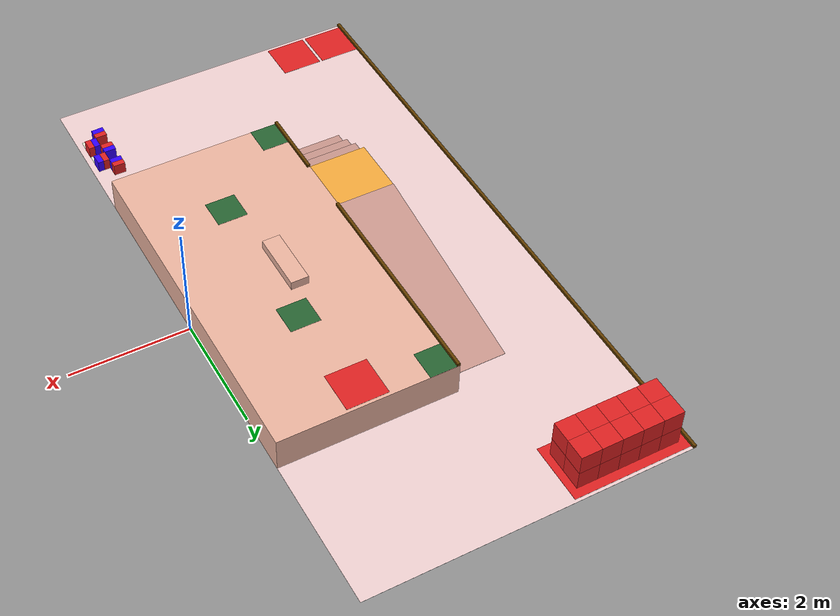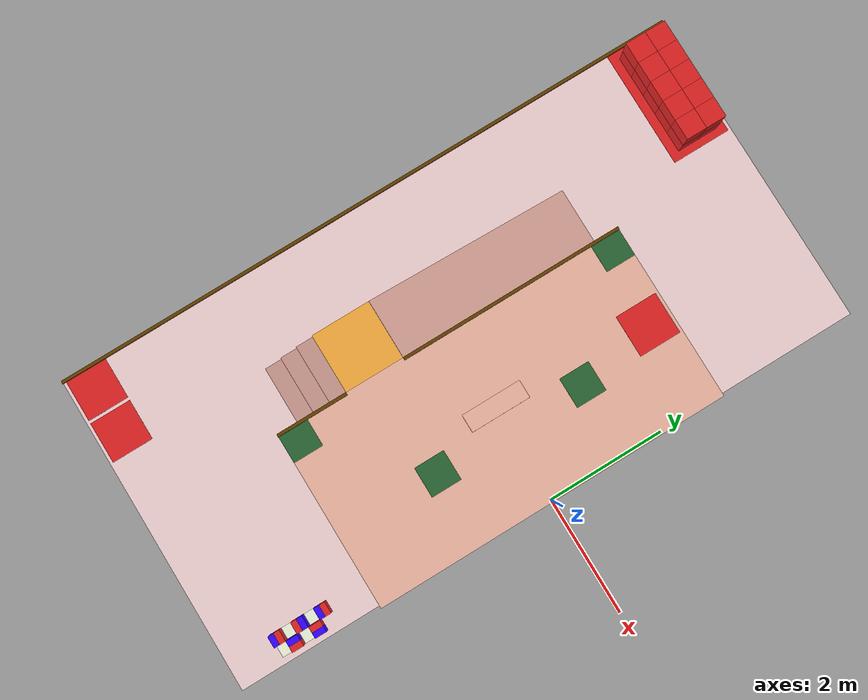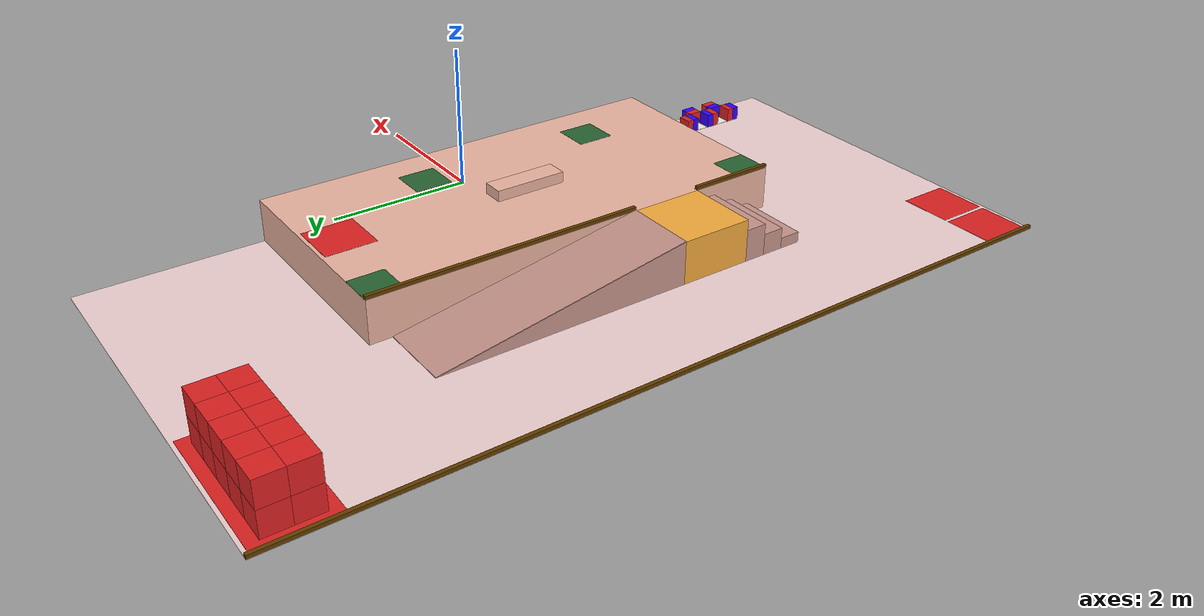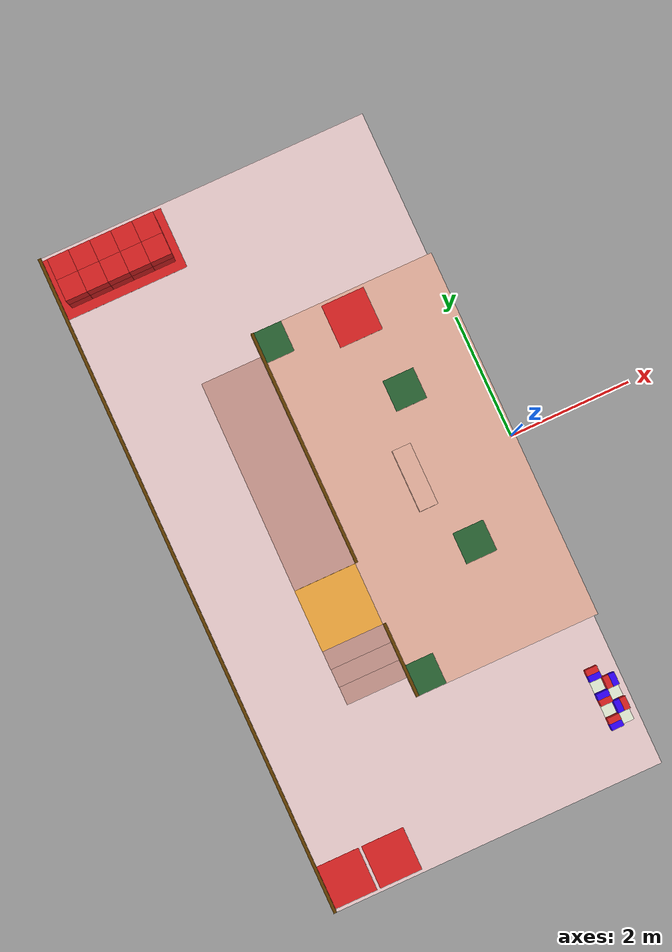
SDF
<sdf version="1.9">
 <world name="robocon_2027">
  <model name="robocon_2027_field">
   <static>true</static>
   <link name="ground_red">
    <pose>-2.750000 0.000000 0.001000 0.000000 0.000000 0.000000</pose>
    <visual name="visual">
     <geometry><box><size>5.500000 11.000000 0.002000</size></box></geometry>
     <cast_shadows>false</cast_shadows>
     <material>
      <ambient>0.941176 0.823529 0.823529 1</ambient>
      <diffuse>0.941176 0.823529 0.823529 1</diffuse>
      <specular>0.08 0.08 0.08 1</specular>
      <double_sided>true</double_sided>
     </material>
    </visual>
   </link>
   <link name="storage_red">
    <pose>-4.450000 4.950000 0.003000 0.000000 0.000000 0.000000</pose>
    <visual name="visual">
     <geometry><box><size>2.000000 1.000000 0.002000</size></box></geometry>
     <cast_shadows>false</cast_shadows>
     <material>
      <ambient>0.874510 0.133333 0.133333 1</ambient>
      <diffuse>0.874510 0.133333 0.133333 1</diffuse>
      <specular>0.08 0.08 0.08 1</specular>
      <double_sided>true</double_sided>
     </material>
    </visual>
   </link>
   <link name="start_red_outer">
    <pose>-5.100000 -5.100000 0.003000 0.000000 0.000000 0.000000</pose>
    <visual name="visual">
     <geometry><box><size>0.700000 0.700000 0.002000</size></box></geometry>
     <cast_shadows>false</cast_shadows>
     <material>
      <ambient>0.874510 0.133333 0.133333 1</ambient>
      <diffuse>0.874510 0.133333 0.133333 1</diffuse>
      <specular>0.08 0.08 0.08 1</specular>
      <double_sided>true</double_sided>
     </material>
    </visual>
   </link>
   <link name="start_red_inner">
    <pose>-4.350000 -5.100000 0.003000 0.000000 0.000000 0.000000</pose>
    <visual name="visual">
     <geometry><box><size>0.700000 0.700000 0.002000</size></box></geometry>
     <cast_shadows>false</cast_shadows>
     <material>
      <ambient>0.874510 0.133333 0.133333 1</ambient>
      <diffuse>0.874510 0.133333 0.133333 1</diffuse>
      <specular>0.08 0.08 0.08 1</specular>
      <double_sided>true</double_sided>
     </material>
    </visual>
   </link>
   <link name="sky_grid_0_0">
    <pose>-0.400000 -4.625000 0.006000 0.000000 0.000000 0.000000</pose>
    <visual name="visual">
     <geometry><box><size>0.192000 0.192000 0.002000</size></box></geometry>
     <cast_shadows>false</cast_shadows>
     <material>
      <ambient>0.803922 0.901961 0.745098 1</ambient>
      <diffuse>0.803922 0.901961 0.745098 1</diffuse>
      <specular>0.08 0.08 0.08 1</specular>
      <double_sided>true</double_sided>
     </material>
    </visual>
   </link>
   <link name="sky_grid_0_1">
    <pose>-0.200000 -4.625000 0.006000 0.000000 0.000000 0.000000</pose>
    <visual name="visual">
     <geometry><box><size>0.192000 0.192000 0.002000</size></box></geometry>
     <cast_shadows>false</cast_shadows>
     <material>
      <ambient>0.921569 0.960784 0.862745 1</ambient>
      <diffuse>0.921569 0.960784 0.862745 1</diffuse>
      <specular>0.08 0.08 0.08 1</specular>
      <double_sided>true</double_sided>
     </material>
    </visual>
   </link>
   <link name="sky_grid_1_0">
    <pose>-0.400000 -4.425000 0.006000 0.000000 0.000000 0.000000</pose>
    <visual name="visual">
     <geometry><box><size>0.192000 0.192000 0.002000</size></box></geometry>
     <cast_shadows>false</cast_shadows>
     <material>
      <ambient>0.921569 0.960784 0.862745 1</ambient>
      <diffuse>0.921569 0.960784 0.862745 1</diffuse>
      <specular>0.08 0.08 0.08 1</specular>
      <double_sided>true</double_sided>
     </material>
    </visual>
   </link>
   <link name="sky_grid_1_1">
    <pose>-0.200000 -4.425000 0.006000 0.000000 0.000000 0.000000</pose>
    <visual name="visual">
     <geometry><box><size>0.192000 0.192000 0.002000</size></box></geometry>
     <cast_shadows>false</cast_shadows>
     <material>
      <ambient>0.803922 0.901961 0.745098 1</ambient>
      <diffuse>0.803922 0.901961 0.745098 1</diffuse>
      <specular>0.08 0.08 0.08 1</specular>
      <double_sided>true</double_sided>
     </material>
    </visual>
   </link>
   <link name="sky_grid_2_0">
    <pose>-0.400000 -4.225000 0.006000 0.000000 0.000000 0.000000</pose>
    <visual name="visual">
     <geometry><box><size>0.192000 0.192000 0.002000</size></box></geometry>
     <cast_shadows>false</cast_shadows>
     <material>
      <ambient>0.803922 0.901961 0.745098 1</ambient>
      <diffuse>0.803922 0.901961 0.745098 1</diffuse>
      <specular>0.08 0.08 0.08 1</specular>
      <double_sided>true</double_sided>
     </material>
    </visual>
   </link>
   <link name="sky_grid_2_1">
    <pose>-0.200000 -4.225000 0.006000 0.000000 0.000000 0.000000</pose>
    <visual name="visual">
     <geometry><box><size>0.192000 0.192000 0.002000</size></box></geometry>
     <cast_shadows>false</cast_shadows>
     <material>
      <ambient>0.921569 0.960784 0.862745 1</ambient>
      <diffuse>0.921569 0.960784 0.862745 1</diffuse>
      <specular>0.08 0.08 0.08 1</specular>
      <double_sided>true</double_sided>
     </material>
    </visual>
   </link>
   <link name="sky_grid_3_0">
    <pose>-0.400000 -4.025000 0.006000 0.000000 0.000000 0.000000</pose>
    <visual name="visual">
     <geometry><box><size>0.192000 0.192000 0.002000</size></box></geometry>
     <cast_shadows>false</cast_shadows>
     <material>
      <ambient>0.921569 0.960784 0.862745 1</ambient>
      <diffuse>0.921569 0.960784 0.862745 1</diffuse>
      <specular>0.08 0.08 0.08 1</specular>
      <double_sided>true</double_sided>
     </material>
    </visual>
   </link>
   <link name="sky_grid_3_1">
    <pose>-0.200000 -4.025000 0.006000 0.000000 0.000000 0.000000</pose>
    <visual name="visual">
     <geometry><box><size>0.192000 0.192000 0.002000</size></box></geometry>
     <cast_shadows>false</cast_shadows>
     <material>
      <ambient>0.803922 0.901961 0.745098 1</ambient>
      <diffuse>0.803922 0.901961 0.745098 1</diffuse>
      <specular>0.08 0.08 0.08 1</specular>
      <double_sided>true</double_sided>
     </material>
    </visual>
   </link>
   <link name="sky_grid_4_0">
    <pose>-0.400000 -3.825000 0.006000 0.000000 0.000000 0.000000</pose>
    <visual name="visual">
     <geometry><box><size>0.192000 0.192000 0.002000</size></box></geometry>
     <cast_shadows>false</cast_shadows>
     <material>
      <ambient>0.803922 0.901961 0.745098 1</ambient>
      <diffuse>0.803922 0.901961 0.745098 1</diffuse>
      <specular>0.08 0.08 0.08 1</specular>
      <double_sided>true</double_sided>
     </material>
    </visual>
   </link>
   <link name="wall_ground_x_neg">
    <pose>-5.475000 0.000000 0.025000 0.000000 0.000000 0.000000</pose>
    <collision name="collision">
     <geometry><box><size>0.050000 11.000000 0.050000</size></box></geometry>
    </collision>
    <visual name="visual">
     <geometry><box><size>0.050000 11.000000 0.050000</size></box></geometry>
     <material>
      <ambient>0.392157 0.243137 0.000000 1</ambient>
      <diffuse>0.392157 0.243137 0.000000 1</diffuse>
      <specular>0.08 0.08 0.08 1</specular>
      <double_sided>true</double_sided>
     </material>
    </visual>
   </link>
   <link name="l1_red">
    <pose>-1.500000 0.000000 0.300000 0.000000 0.000000 0.000000</pose>
    <collision name="collision">
     <geometry><box><size>3.000000 6.000000 0.600000</size></box></geometry>
    </collision>
    <visual name="visual">
     <geometry><box><size>3.000000 6.000000 0.600000</size></box></geometry>
     <material>
      <ambient>0.921569 0.705882 0.627451 1</ambient>
      <diffuse>0.921569 0.705882 0.627451 1</diffuse>
      <specular>0.08 0.08 0.08 1</specular>
      <double_sided>true</double_sided>
     </material>
    </visual>
   </link>
   <link name="l1_spot_red_positive">
    <pose>-2.750000 2.750000 0.603000 0.000000 0.000000 0.000000</pose>
    <visual name="visual">
     <geometry><box><size>0.500000 0.500000 0.002000</size></box></geometry>
     <cast_shadows>false</cast_shadows>
     <material>
      <ambient>0.156863 0.392157 0.196078 1</ambient>
      <diffuse>0.156863 0.392157 0.196078 1</diffuse>
      <specular>0.08 0.08 0.08 1</specular>
      <double_sided>true</double_sided>
     </material>
    </visual>
   </link>
   <link name="l1_spot_red_negative">
    <pose>-2.750000 -2.750000 0.603000 0.000000 0.000000 0.000000</pose>
    <visual name="visual">
     <geometry><box><size>0.500000 0.500000 0.002000</size></box></geometry>
     <cast_shadows>false</cast_shadows>
     <material>
      <ambient>0.156863 0.392157 0.196078 1</ambient>
      <diffuse>0.156863 0.392157 0.196078 1</diffuse>
      <specular>0.08 0.08 0.08 1</specular>
      <double_sided>true</double_sided>
     </material>
    </visual>
   </link>
   <link name="l1_retry_red">
    <pose>-1.500000 2.600000 0.603000 0.000000 0.000000 0.000000</pose>
    <visual name="visual">
     <geometry><box><size>0.700000 0.700000 0.002000</size></box></geometry>
     <cast_shadows>false</cast_shadows>
     <material>
      <ambient>0.874510 0.133333 0.133333 1</ambient>
      <diffuse>0.874510 0.133333 0.133333 1</diffuse>
      <specular>0.08 0.08 0.08 1</specular>
      <double_sided>true</double_sided>
     </material>
    </visual>
   </link>
   <link name="wall_l1_red_before_transfer">
    <pose>-2.975000 -2.400000 0.625000 0.000000 0.000000 0.000000</pose>
    <collision name="collision">
     <geometry><box><size>0.050000 1.200000 0.050000</size></box></geometry>
    </collision>
    <visual name="visual">
     <geometry><box><size>0.050000 1.200000 0.050000</size></box></geometry>
     <material>
      <ambient>0.392157 0.243137 0.000000 1</ambient>
      <diffuse>0.392157 0.243137 0.000000 1</diffuse>
      <specular>0.08 0.08 0.08 1</specular>
      <double_sided>true</double_sided>
     </material>
    </visual>
   </link>
   <link name="wall_l1_red_after_transfer">
    <pose>-2.975000 1.100000 0.625000 0.000000 0.000000 0.000000</pose>
    <collision name="collision">
     <geometry><box><size>0.050000 3.800000 0.050000</size></box></geometry>
    </collision>
    <visual name="visual">
     <geometry><box><size>0.050000 3.800000 0.050000</size></box></geometry>
     <material>
      <ambient>0.392157 0.243137 0.000000 1</ambient>
      <diffuse>0.392157 0.243137 0.000000 1</diffuse>
      <specular>0.08 0.08 0.08 1</specular>
      <double_sided>true</double_sided>
     </material>
    </visual>
   </link>
   <link name="ramp_red">
    <pose>-3.500000 0.950000 0.000000 0.000000 0.000000 0.000000</pose>
    <visual name="visual">
     <geometry><mesh><uri>model://ares_2027sim/meshes/ramp_wedge.obj</uri></mesh></geometry>
     <material>
      <ambient>0.784314 0.588235 0.549020 1</ambient>
      <diffuse>0.784314 0.588235 0.549020 1</diffuse>
      <specular>0.08 0.08 0.08 1</specular>
      <double_sided>true</double_sided>
     </material>
    </visual>
    <collision name="slope_collision">
     <pose>0.000000 0.000000 0.300000 -0.169778 0.000000 0.000000</pose>
     <geometry><box><size>1.000000 3.551056 0.020000</size></box></geometry>
    </collision>
    <visual name="slope_surface_visual">
     <pose>0.000000 0.001000 0.305000 -0.169778 0.000000 0.000000</pose>
     <geometry><box><size>1.000000 3.551056 0.010000</size></box></geometry>
     <material>
      <ambient>0.784314 0.588235 0.549020 1</ambient>
      <diffuse>0.784314 0.588235 0.549020 1</diffuse>
      <specular>0.08 0.08 0.08 1</specular>
      <double_sided>true</double_sided>
     </material>
    </visual>
    <collision name="fill_collision_00">
     <pose>0.000000 -1.700000 0.291429 0.000000 0.000000 0.000000</pose>
     <geometry><box><size>1.000000 0.100000 0.582857</size></box></geometry>
    </collision>
    <collision name="fill_collision_01">
     <pose>0.000000 -1.600000 0.282857 0.000000 0.000000 0.000000</pose>
     <geometry><box><size>1.000000 0.100000 0.565714</size></box></geometry>
    </collision>
    <collision name="fill_collision_02">
     <pose>0.000000 -1.500000 0.274286 0.000000 0.000000 0.000000</pose>
     <geometry><box><size>1.000000 0.100000 0.548571</size></box></geometry>
    </collision>
    <collision name="fill_collision_03">
     <pose>0.000000 -1.400000 0.265714 0.000000 0.000000 0.000000</pose>
     <geometry><box><size>1.000000 0.100000 0.531429</size></box></geometry>
    </collision>
    <collision name="fill_collision_04">
     <pose>0.000000 -1.300000 0.257143 0.000000 0.000000 0.000000</pose>
     <geometry><box><size>1.000000 0.100000 0.514286</size></box></geometry>
    </collision>
    <collision name="fill_collision_05">
     <pose>0.000000 -1.200000 0.248571 0.000000 0.000000 0.000000</pose>
     <geometry><box><size>1.000000 0.100000 0.497143</size></box></geometry>
    </collision>
    <collision name="fill_collision_06">
     <pose>0.000000 -1.100000 0.240000 0.000000 0.000000 0.000000</pose>
     <geometry><box><size>1.000000 0.100000 0.480000</size></box></geometry>
    </collision>
    <collision name="fill_collision_07">
     <pose>0.000000 -1.000000 0.231429 0.000000 0.000000 0.000000</pose>
     <geometry><box><size>1.000000 0.100000 0.462857</size></box></geometry>
    </collision>
    <collision name="fill_collision_08">
     <pose>0.000000 -0.900000 0.222857 0.000000 0.000000 0.000000</pose>
     <geometry><box><size>1.000000 0.100000 0.445714</size></box></geometry>
    </collision>
    <collision name="fill_collision_09">
     <pose>0.000000 -0.800000 0.214286 0.000000 0.000000 0.000000</pose>
     <geometry><box><size>1.000000 0.100000 0.428571</size></box></geometry>
    </collision>
    <collision name="fill_collision_10">
     <pose>0.000000 -0.700000 0.205714 0.000000 0.000000 0.000000</pose>
     <geometry><box><size>1.000000 0.100000 0.411429</size></box></geometry>
    </collision>
    <collision name="fill_collision_11">
     <pose>0.000000 -0.600000 0.197143 0.000000 0.000000 0.000000</pose>
     <geometry><box><size>1.000000 0.100000 0.394286</size></box></geometry>
    </collision>
    <collision name="fill_collision_12">
     <pose>0.000000 -0.500000 0.188571 0.000000 0.000000 0.000000</pose>
     <geometry><box><size>1.000000 0.100000 0.377143</size></box></geometry>
    </collision>
    <collision name="fill_collision_13">
     <pose>0.000000 -0.400000 0.180000 0.000000 0.000000 0.000000</pose>
     <geometry><box><size>1.000000 0.100000 0.360000</size></box></geometry>
    </collision>
    <collision name="fill_collision_14">
     <pose>0.000000 -0.300000 0.171429 0.000000 0.000000 0.000000</pose>
     <geometry><box><size>1.000000 0.100000 0.342857</size></box></geometry>
    </collision>
    <collision name="fill_collision_15">
     <pose>0.000000 -0.200000 0.162857 0.000000 0.000000 0.000000</pose>
     <geometry><box><size>1.000000 0.100000 0.325714</size></box></geometry>
    </collision>
    <collision name="fill_collision_16">
     <pose>0.000000 -0.100000 0.154286 0.000000 0.000000 0.000000</pose>
     <geometry><box><size>1.000000 0.100000 0.308571</size></box></geometry>
    </collision>
    <collision name="fill_collision_17">
     <pose>0.000000 0.000000 0.145714 0.000000 0.000000 0.000000</pose>
     <geometry><box><size>1.000000 0.100000 0.291429</size></box></geometry>
    </collision>
    <collision name="fill_collision_18">
     <pose>0.000000 0.100000 0.137143 0.000000 0.000000 0.000000</pose>
     <geometry><box><size>1.000000 0.100000 0.274286</size></box></geometry>
    </collision>
    <collision name="fill_collision_19">
     <pose>0.000000 0.200000 0.128571 0.000000 0.000000 0.000000</pose>
     <geometry><box><size>1.000000 0.100000 0.257143</size></box></geometry>
    </collision>
    <collision name="fill_collision_20">
     <pose>0.000000 0.300000 0.120000 0.000000 0.000000 0.000000</pose>
     <geometry><box><size>1.000000 0.100000 0.240000</size></box></geometry>
    </collision>
    <collision name="fill_collision_21">
     <pose>0.000000 0.400000 0.111429 0.000000 0.000000 0.000000</pose>
     <geometry><box><size>1.000000 0.100000 0.222857</size></box></geometry>
    </collision>
    <collision name="fill_collision_22">
     <pose>0.000000 0.500000 0.102857 0.000000 0.000000 0.000000</pose>
     <geometry><box><size>1.000000 0.100000 0.205714</size></box></geometry>
    </collision>
    <collision name="fill_collision_23">
     <pose>0.000000 0.600000 0.094286 0.000000 0.000000 0.000000</pose>
     <geometry><box><size>1.000000 0.100000 0.188571</size></box></geometry>
    </collision>
    <collision name="fill_collision_24">
     <pose>0.000000 0.700000 0.085714 0.000000 0.000000 0.000000</pose>
     <geometry><box><size>1.000000 0.100000 0.171429</size></box></geometry>
    </collision>
    <collision name="fill_collision_25">
     <pose>0.000000 0.800000 0.077143 0.000000 0.000000 0.000000</pose>
     <geometry><box><size>1.000000 0.100000 0.154286</size></box></geometry>
    </collision>
    <collision name="fill_collision_26">
     <pose>0.000000 0.900000 0.068571 0.000000 0.000000 0.000000</pose>
     <geometry><box><size>1.000000 0.100000 0.137143</size></box></geometry>
    </collision>
    <collision name="fill_collision_27">
     <pose>0.000000 1.000000 0.060000 0.000000 0.000000 0.000000</pose>
     <geometry><box><size>1.000000 0.100000 0.120000</size></box></geometry>
    </collision>
    <collision name="fill_collision_28">
     <pose>0.000000 1.100000 0.051429 0.000000 0.000000 0.000000</pose>
     <geometry><box><size>1.000000 0.100000 0.102857</size></box></geometry>
    </collision>
    <collision name="fill_collision_29">
     <pose>0.000000 1.200000 0.042857 0.000000 0.000000 0.000000</pose>
     <geometry><box><size>1.000000 0.100000 0.085714</size></box></geometry>
    </collision>
    <collision name="fill_collision_30">
     <pose>0.000000 1.300000 0.034286 0.000000 0.000000 0.000000</pose>
     <geometry><box><size>1.000000 0.100000 0.068571</size></box></geometry>
    </collision>
    <collision name="fill_collision_31">
     <pose>0.000000 1.400000 0.025714 0.000000 0.000000 0.000000</pose>
     <geometry><box><size>1.000000 0.100000 0.051429</size></box></geometry>
    </collision>
    <collision name="fill_collision_32">
     <pose>0.000000 1.500000 0.017143 0.000000 0.000000 0.000000</pose>
     <geometry><box><size>1.000000 0.100000 0.034286</size></box></geometry>
    </collision>
    <collision name="fill_collision_33">
     <pose>0.000000 1.600000 0.008571 0.000000 0.000000 0.000000</pose>
     <geometry><box><size>1.000000 0.100000 0.017143</size></box></geometry>
    </collision>
    <collision name="high_end_collision">
     <pose>0.000000 -1.745000 0.300000 0.000000 0.000000 0.000000</pose>
     <geometry><box><size>1.000000 0.010000 0.600000</size></box></geometry>
    </collision>
   </link>
   <link name="transfer_red">
    <pose>-3.500000 -1.300000 0.300000 0.000000 0.000000 0.000000</pose>
    <collision name="collision">
     <geometry><box><size>1.000000 1.000000 0.600000</size></box></geometry>
    </collision>
    <visual name="visual">
     <geometry><box><size>1.000000 1.000000 0.600000</size></box></geometry>
     <material>
      <ambient>0.960784 0.666667 0.235294 1</ambient>
      <diffuse>0.960784 0.666667 0.235294 1</diffuse>
      <specular>0.08 0.08 0.08 1</specular>
      <double_sided>true</double_sided>
     </material>
    </visual>
   </link>
   <link name="stair_red_1">
    <pose>-3.500000 -2.550000 0.075000 0.000000 0.000000 0.000000</pose>
    <collision name="collision">
     <geometry><box><size>1.000000 0.300000 0.150000</size></box></geometry>
    </collision>
    <visual name="visual">
     <geometry><box><size>1.000000 0.300000 0.150000</size></box></geometry>
     <material>
      <ambient>0.784314 0.588235 0.549020 1</ambient>
      <diffuse>0.784314 0.588235 0.549020 1</diffuse>
      <specular>0.08 0.08 0.08 1</specular>
      <double_sided>true</double_sided>
     </material>
    </visual>
   </link>
   <link name="stair_red_2">
    <pose>-3.500000 -2.250000 0.150000 0.000000 0.000000 0.000000</pose>
    <collision name="collision">
     <geometry><box><size>1.000000 0.300000 0.300000</size></box></geometry>
    </collision>
    <visual name="visual">
     <geometry><box><size>1.000000 0.300000 0.300000</size></box></geometry>
     <material>
      <ambient>0.784314 0.588235 0.549020 1</ambient>
      <diffuse>0.784314 0.588235 0.549020 1</diffuse>
      <specular>0.08 0.08 0.08 1</specular>
      <double_sided>true</double_sided>
     </material>
    </visual>
   </link>
   <link name="stair_red_3">
    <pose>-3.500000 -1.950000 0.225000 0.000000 0.000000 0.000000</pose>
    <collision name="collision">
     <geometry><box><size>1.000000 0.300000 0.450000</size></box></geometry>
    </collision>
    <visual name="visual">
     <geometry><box><size>1.000000 0.300000 0.450000</size></box></geometry>
     <material>
      <ambient>0.784314 0.588235 0.549020 1</ambient>
      <diffuse>0.784314 0.588235 0.549020 1</diffuse>
      <specular>0.08 0.08 0.08 1</specular>
      <double_sided>true</double_sided>
     </material>
    </visual>
   </link>
   <link name="l2_stair_red">
    <pose>-1.650000 0.000000 0.675000 0.000000 0.000000 0.000000</pose>
    <collision name="collision">
     <geometry><box><size>0.300000 1.000000 0.150000</size></box></geometry>
    </collision>
    <visual name="visual">
     <geometry><box><size>0.300000 1.000000 0.150000</size></box></geometry>
     <material>
      <ambient>0.921569 0.705882 0.627451 1</ambient>
      <diffuse>0.921569 0.705882 0.627451 1</diffuse>
      <specular>0.08 0.08 0.08 1</specular>
      <double_sided>true</double_sided>
     </material>
    </visual>
   </link>
   <link name="l2_spot_red_positive">
    <pose>-1.250000 1.250000 0.901000 0.000000 0.000000 0.000000</pose>
    <visual name="visual">
     <geometry><box><size>0.500000 0.500000 0.002000</size></box></geometry>
     <cast_shadows>false</cast_shadows>
     <material>
      <ambient>0.156863 0.392157 0.196078 1</ambient>
      <diffuse>0.156863 0.392157 0.196078 1</diffuse>
      <specular>0.08 0.08 0.08 1</specular>
      <double_sided>true</double_sided>
     </material>
    </visual>
   </link>
   <link name="l2_spot_red_negative">
    <pose>-1.250000 -1.250000 0.901000 0.000000 0.000000 0.000000</pose>
    <visual name="visual">
     <geometry><box><size>0.500000 0.500000 0.002000</size></box></geometry>
     <cast_shadows>false</cast_shadows>
     <material>
      <ambient>0.156863 0.392157 0.196078 1</ambient>
      <diffuse>0.156863 0.392157 0.196078 1</diffuse>
      <specular>0.08 0.08 0.08 1</specular>
      <double_sided>true</double_sided>
     </material>
    </visual>
   </link>
  </model>
  <model name="earth_block_red_01">
   <pose>-5.150000 4.775000 0.175000 0.000000 0.000000 0.000000</pose>
   <link name="earth_block_red_01_link">
    <inertial>
     <mass>0.275000</mass>
     <inertia>
      <ixx>0.00561458</ixx>
      <iyy>0.00561458</iyy>
      <izz>0.00561458</izz>
      <ixy>0.00000000</ixy>
      <ixz>0.00000000</ixz>
      <iyz>0.00000000</iyz>
     </inertia>
    </inertial>
    <collision name="collision">
     <geometry><box><size>0.350000 0.350000 0.350000</size></box></geometry>
     <surface><friction><ode><mu>0.80</mu><mu2>0.80</mu2></ode></friction></surface>
    </collision>
    <visual name="body">
     <geometry><box><size>0.350000 0.350000 0.350000</size></box></geometry>
     <material>
      <ambient>0.874510 0.133333 0.133333 1</ambient>
      <diffuse>0.874510 0.133333 0.133333 1</diffuse>
      <specular>0.08 0.08 0.08 1</specular>
      <double_sided>true</double_sided>
     </material>
    </visual>
   </link>
  </model>
  <model name="earth_block_red_02">
   <pose>-4.800000 4.775000 0.175000 0.000000 0.000000 0.000000</pose>
   <link name="earth_block_red_02_link">
    <inertial>
     <mass>0.275000</mass>
     <inertia>
      <ixx>0.00561458</ixx>
      <iyy>0.00561458</iyy>
      <izz>0.00561458</izz>
      <ixy>0.00000000</ixy>
      <ixz>0.00000000</ixz>
      <iyz>0.00000000</iyz>
     </inertia>
    </inertial>
    <collision name="collision">
     <geometry><box><size>0.350000 0.350000 0.350000</size></box></geometry>
     <surface><friction><ode><mu>0.80</mu><mu2>0.80</mu2></ode></friction></surface>
    </collision>
    <visual name="body">
     <geometry><box><size>0.350000 0.350000 0.350000</size></box></geometry>
     <material>
      <ambient>0.874510 0.133333 0.133333 1</ambient>
      <diffuse>0.874510 0.133333 0.133333 1</diffuse>
      <specular>0.08 0.08 0.08 1</specular>
      <double_sided>true</double_sided>
     </material>
    </visual>
   </link>
  </model>
  <model name="earth_block_red_03">
   <pose>-4.450000 4.775000 0.175000 0.000000 0.000000 0.000000</pose>
   <link name="earth_block_red_03_link">
    <inertial>
     <mass>0.275000</mass>
     <inertia>
      <ixx>0.00561458</ixx>
      <iyy>0.00561458</iyy>
      <izz>0.00561458</izz>
      <ixy>0.00000000</ixy>
      <ixz>0.00000000</ixz>
      <iyz>0.00000000</iyz>
     </inertia>
    </inertial>
    <collision name="collision">
     <geometry><box><size>0.350000 0.350000 0.350000</size></box></geometry>
     <surface><friction><ode><mu>0.80</mu><mu2>0.80</mu2></ode></friction></surface>
    </collision>
    <visual name="body">
     <geometry><box><size>0.350000 0.350000 0.350000</size></box></geometry>
     <material>
      <ambient>0.874510 0.133333 0.133333 1</ambient>
      <diffuse>0.874510 0.133333 0.133333 1</diffuse>
      <specular>0.08 0.08 0.08 1</specular>
      <double_sided>true</double_sided>
     </material>
    </visual>
   </link>
  </model>
  <model name="earth_block_red_04">
   <pose>-4.100000 4.775000 0.175000 0.000000 0.000000 0.000000</pose>
   <link name="earth_block_red_04_link">
    <inertial>
     <mass>0.275000</mass>
     <inertia>
      <ixx>0.00561458</ixx>
      <iyy>0.00561458</iyy>
      <izz>0.00561458</izz>
      <ixy>0.00000000</ixy>
      <ixz>0.00000000</ixz>
      <iyz>0.00000000</iyz>
     </inertia>
    </inertial>
    <collision name="collision">
     <geometry><box><size>0.350000 0.350000 0.350000</size></box></geometry>
     <surface><friction><ode><mu>0.80</mu><mu2>0.80</mu2></ode></friction></surface>
    </collision>
    <visual name="body">
     <geometry><box><size>0.350000 0.350000 0.350000</size></box></geometry>
     <material>
      <ambient>0.874510 0.133333 0.133333 1</ambient>
      <diffuse>0.874510 0.133333 0.133333 1</diffuse>
      <specular>0.08 0.08 0.08 1</specular>
      <double_sided>true</double_sided>
     </material>
    </visual>
   </link>
  </model>
  <model name="earth_block_red_05">
   <pose>-3.750000 4.775000 0.175000 0.000000 0.000000 0.000000</pose>
   <link name="earth_block_red_05_link">
    <inertial>
     <mass>0.275000</mass>
     <inertia>
      <ixx>0.00561458</ixx>
      <iyy>0.00561458</iyy>
      <izz>0.00561458</izz>
      <ixy>0.00000000</ixy>
      <ixz>0.00000000</ixz>
      <iyz>0.00000000</iyz>
     </inertia>
    </inertial>
    <collision name="collision">
     <geometry><box><size>0.350000 0.350000 0.350000</size></box></geometry>
     <surface><friction><ode><mu>0.80</mu><mu2>0.80</mu2></ode></friction></surface>
    </collision>
    <visual name="body">
     <geometry><box><size>0.350000 0.350000 0.350000</size></box></geometry>
     <material>
      <ambient>0.874510 0.133333 0.133333 1</ambient>
      <diffuse>0.874510 0.133333 0.133333 1</diffuse>
      <specular>0.08 0.08 0.08 1</specular>
      <double_sided>true</double_sided>
     </material>
    </visual>
   </link>
  </model>
  <model name="earth_block_red_06">
   <pose>-5.150000 5.125000 0.175000 0.000000 0.000000 0.000000</pose>
   <link name="earth_block_red_06_link">
    <inertial>
     <mass>0.275000</mass>
     <inertia>
      <ixx>0.00561458</ixx>
      <iyy>0.00561458</iyy>
      <izz>0.00561458</izz>
      <ixy>0.00000000</ixy>
      <ixz>0.00000000</ixz>
      <iyz>0.00000000</iyz>
     </inertia>
    </inertial>
    <collision name="collision">
     <geometry><box><size>0.350000 0.350000 0.350000</size></box></geometry>
     <surface><friction><ode><mu>0.80</mu><mu2>0.80</mu2></ode></friction></surface>
    </collision>
    <visual name="body">
     <geometry><box><size>0.350000 0.350000 0.350000</size></box></geometry>
     <material>
      <ambient>0.874510 0.133333 0.133333 1</ambient>
      <diffuse>0.874510 0.133333 0.133333 1</diffuse>
      <specular>0.08 0.08 0.08 1</specular>
      <double_sided>true</double_sided>
     </material>
    </visual>
   </link>
  </model>
  <model name="earth_block_red_07">
   <pose>-4.800000 5.125000 0.175000 0.000000 0.000000 0.000000</pose>
   <link name="earth_block_red_07_link">
    <inertial>
     <mass>0.275000</mass>
     <inertia>
      <ixx>0.00561458</ixx>
      <iyy>0.00561458</iyy>
      <izz>0.00561458</izz>
      <ixy>0.00000000</ixy>
      <ixz>0.00000000</ixz>
      <iyz>0.00000000</iyz>
     </inertia>
    </inertial>
    <collision name="collision">
     <geometry><box><size>0.350000 0.350000 0.350000</size></box></geometry>
     <surface><friction><ode><mu>0.80</mu><mu2>0.80</mu2></ode></friction></surface>
    </collision>
    <visual name="body">
     <geometry><box><size>0.350000 0.350000 0.350000</size></box></geometry>
     <material>
      <ambient>0.874510 0.133333 0.133333 1</ambient>
      <diffuse>0.874510 0.133333 0.133333 1</diffuse>
      <specular>0.08 0.08 0.08 1</specular>
      <double_sided>true</double_sided>
     </material>
    </visual>
   </link>
  </model>
  <model name="earth_block_red_08">
   <pose>-4.450000 5.125000 0.175000 0.000000 0.000000 0.000000</pose>
   <link name="earth_block_red_08_link">
    <inertial>
     <mass>0.275000</mass>
     <inertia>
      <ixx>0.00561458</ixx>
      <iyy>0.00561458</iyy>
      <izz>0.00561458</izz>
      <ixy>0.00000000</ixy>
      <ixz>0.00000000</ixz>
      <iyz>0.00000000</iyz>
     </inertia>
    </inertial>
    <collision name="collision">
     <geometry><box><size>0.350000 0.350000 0.350000</size></box></geometry>
     <surface><friction><ode><mu>0.80</mu><mu2>0.80</mu2></ode></friction></surface>
    </collision>
    <visual name="body">
     <geometry><box><size>0.350000 0.350000 0.350000</size></box></geometry>
     <material>
      <ambient>0.874510 0.133333 0.133333 1</ambient>
      <diffuse>0.874510 0.133333 0.133333 1</diffuse>
      <specular>0.08 0.08 0.08 1</specular>
      <double_sided>true</double_sided>
     </material>
    </visual>
   </link>
  </model>
  <model name="earth_block_red_09">
   <pose>-4.100000 5.125000 0.175000 0.000000 0.000000 0.000000</pose>
   <link name="earth_block_red_09_link">
    <inertial>
     <mass>0.275000</mass>
     <inertia>
      <ixx>0.00561458</ixx>
      <iyy>0.00561458</iyy>
      <izz>0.00561458</izz>
      <ixy>0.00000000</ixy>
      <ixz>0.00000000</ixz>
      <iyz>0.00000000</iyz>
     </inertia>
    </inertial>
    <collision name="collision">
     <geometry><box><size>0.350000 0.350000 0.350000</size></box></geometry>
     <surface><friction><ode><mu>0.80</mu><mu2>0.80</mu2></ode></friction></surface>
    </collision>
    <visual name="body">
     <geometry><box><size>0.350000 0.350000 0.350000</size></box></geometry>
     <material>
      <ambient>0.874510 0.133333 0.133333 1</ambient>
      <diffuse>0.874510 0.133333 0.133333 1</diffuse>
      <specular>0.08 0.08 0.08 1</specular>
      <double_sided>true</double_sided>
     </material>
    </visual>
   </link>
  </model>
  <model name="earth_block_red_10">
   <pose>-3.750000 5.125000 0.175000 0.000000 0.000000 0.000000</pose>
   <link name="earth_block_red_10_link">
    <inertial>
     <mass>0.275000</mass>
     <inertia>
      <ixx>0.00561458</ixx>
      <iyy>0.00561458</iyy>
      <izz>0.00561458</izz>
      <ixy>0.00000000</ixy>
      <ixz>0.00000000</ixz>
      <iyz>0.00000000</iyz>
     </inertia>
    </inertial>
    <collision name="collision">
     <geometry><box><size>0.350000 0.350000 0.350000</size></box></geometry>
     <surface><friction><ode><mu>0.80</mu><mu2>0.80</mu2></ode></friction></surface>
    </collision>
    <visual name="body">
     <geometry><box><size>0.350000 0.350000 0.350000</size></box></geometry>
     <material>
      <ambient>0.874510 0.133333 0.133333 1</ambient>
      <diffuse>0.874510 0.133333 0.133333 1</diffuse>
      <specular>0.08 0.08 0.08 1</specular>
      <double_sided>true</double_sided>
     </material>
    </visual>
   </link>
  </model>
  <model name="earth_block_red_11">
   <pose>-5.150000 4.775000 0.525000 0.000000 0.000000 0.000000</pose>
   <link name="earth_block_red_11_link">
    <inertial>
     <mass>0.275000</mass>
     <inertia>
      <ixx>0.00561458</ixx>
      <iyy>0.00561458</iyy>
      <izz>0.00561458</izz>
      <ixy>0.00000000</ixy>
      <ixz>0.00000000</ixz>
      <iyz>0.00000000</iyz>
     </inertia>
    </inertial>
    <collision name="collision">
     <geometry><box><size>0.350000 0.350000 0.350000</size></box></geometry>
     <surface><friction><ode><mu>0.80</mu><mu2>0.80</mu2></ode></friction></surface>
    </collision>
    <visual name="body">
     <geometry><box><size>0.350000 0.350000 0.350000</size></box></geometry>
     <material>
      <ambient>0.874510 0.133333 0.133333 1</ambient>
      <diffuse>0.874510 0.133333 0.133333 1</diffuse>
      <specular>0.08 0.08 0.08 1</specular>
      <double_sided>true</double_sided>
     </material>
    </visual>
   </link>
  </model>
  <model name="earth_block_red_12">
   <pose>-4.800000 4.775000 0.525000 0.000000 0.000000 0.000000</pose>
   <link name="earth_block_red_12_link">
    <inertial>
     <mass>0.275000</mass>
     <inertia>
      <ixx>0.00561458</ixx>
      <iyy>0.00561458</iyy>
      <izz>0.00561458</izz>
      <ixy>0.00000000</ixy>
      <ixz>0.00000000</ixz>
      <iyz>0.00000000</iyz>
     </inertia>
    </inertial>
    <collision name="collision">
     <geometry><box><size>0.350000 0.350000 0.350000</size></box></geometry>
     <surface><friction><ode><mu>0.80</mu><mu2>0.80</mu2></ode></friction></surface>
    </collision>
    <visual name="body">
     <geometry><box><size>0.350000 0.350000 0.350000</size></box></geometry>
     <material>
      <ambient>0.874510 0.133333 0.133333 1</ambient>
      <diffuse>0.874510 0.133333 0.133333 1</diffuse>
      <specular>0.08 0.08 0.08 1</specular>
      <double_sided>true</double_sided>
     </material>
    </visual>
   </link>
  </model>
  <model name="earth_block_red_13">
   <pose>-4.450000 4.775000 0.525000 0.000000 0.000000 0.000000</pose>
   <link name="earth_block_red_13_link">
    <inertial>
     <mass>0.275000</mass>
     <inertia>
      <ixx>0.00561458</ixx>
      <iyy>0.00561458</iyy>
      <izz>0.00561458</izz>
      <ixy>0.00000000</ixy>
      <ixz>0.00000000</ixz>
      <iyz>0.00000000</iyz>
     </inertia>
    </inertial>
    <collision name="collision">
     <geometry><box><size>0.350000 0.350000 0.350000</size></box></geometry>
     <surface><friction><ode><mu>0.80</mu><mu2>0.80</mu2></ode></friction></surface>
    </collision>
    <visual name="body">
     <geometry><box><size>0.350000 0.350000 0.350000</size></box></geometry>
     <material>
      <ambient>0.874510 0.133333 0.133333 1</ambient>
      <diffuse>0.874510 0.133333 0.133333 1</diffuse>
      <specular>0.08 0.08 0.08 1</specular>
      <double_sided>true</double_sided>
     </material>
    </visual>
   </link>
  </model>
  <model name="earth_block_red_14">
   <pose>-4.100000 4.775000 0.525000 0.000000 0.000000 0.000000</pose>
   <link name="earth_block_red_14_link">
    <inertial>
     <mass>0.275000</mass>
     <inertia>
      <ixx>0.00561458</ixx>
      <iyy>0.00561458</iyy>
      <izz>0.00561458</izz>
      <ixy>0.00000000</ixy>
      <ixz>0.00000000</ixz>
      <iyz>0.00000000</iyz>
     </inertia>
    </inertial>
    <collision name="collision">
     <geometry><box><size>0.350000 0.350000 0.350000</size></box></geometry>
     <surface><friction><ode><mu>0.80</mu><mu2>0.80</mu2></ode></friction></surface>
    </collision>
    <visual name="body">
     <geometry><box><size>0.350000 0.350000 0.350000</size></box></geometry>
     <material>
      <ambient>0.874510 0.133333 0.133333 1</ambient>
      <diffuse>0.874510 0.133333 0.133333 1</diffuse>
      <specular>0.08 0.08 0.08 1</specular>
      <double_sided>true</double_sided>
     </material>
    </visual>
   </link>
  </model>
  <model name="earth_block_red_15">
   <pose>-3.750000 4.775000 0.525000 0.000000 0.000000 0.000000</pose>
   <link name="earth_block_red_15_link">
    <inertial>
     <mass>0.275000</mass>
     <inertia>
      <ixx>0.00561458</ixx>
      <iyy>0.00561458</iyy>
      <izz>0.00561458</izz>
      <ixy>0.00000000</ixy>
      <ixz>0.00000000</ixz>
      <iyz>0.00000000</iyz>
     </inertia>
    </inertial>
    <collision name="collision">
     <geometry><box><size>0.350000 0.350000 0.350000</size></box></geometry>
     <surface><friction><ode><mu>0.80</mu><mu2>0.80</mu2></ode></friction></surface>
    </collision>
    <visual name="body">
     <geometry><box><size>0.350000 0.350000 0.350000</size></box></geometry>
     <material>
      <ambient>0.874510 0.133333 0.133333 1</ambient>
      <diffuse>0.874510 0.133333 0.133333 1</diffuse>
      <specular>0.08 0.08 0.08 1</specular>
      <double_sided>true</double_sided>
     </material>
    </visual>
   </link>
  </model>
  <model name="earth_block_red_16">
   <pose>-5.150000 5.125000 0.525000 0.000000 0.000000 0.000000</pose>
   <link name="earth_block_red_16_link">
    <inertial>
     <mass>0.275000</mass>
     <inertia>
      <ixx>0.00561458</ixx>
      <iyy>0.00561458</iyy>
      <izz>0.00561458</izz>
      <ixy>0.00000000</ixy>
      <ixz>0.00000000</ixz>
      <iyz>0.00000000</iyz>
     </inertia>
    </inertial>
    <collision name="collision">
     <geometry><box><size>0.350000 0.350000 0.350000</size></box></geometry>
     <surface><friction><ode><mu>0.80</mu><mu2>0.80</mu2></ode></friction></surface>
    </collision>
    <visual name="body">
     <geometry><box><size>0.350000 0.350000 0.350000</size></box></geometry>
     <material>
      <ambient>0.874510 0.133333 0.133333 1</ambient>
      <diffuse>0.874510 0.133333 0.133333 1</diffuse>
      <specular>0.08 0.08 0.08 1</specular>
      <double_sided>true</double_sided>
     </material>
    </visual>
   </link>
  </model>
  <model name="earth_block_red_17">
   <pose>-4.800000 5.125000 0.525000 0.000000 0.000000 0.000000</pose>
   <link name="earth_block_red_17_link">
    <inertial>
     <mass>0.275000</mass>
     <inertia>
      <ixx>0.00561458</ixx>
      <iyy>0.00561458</iyy>
      <izz>0.00561458</izz>
      <ixy>0.00000000</ixy>
      <ixz>0.00000000</ixz>
      <iyz>0.00000000</iyz>
     </inertia>
    </inertial>
    <collision name="collision">
     <geometry><box><size>0.350000 0.350000 0.350000</size></box></geometry>
     <surface><friction><ode><mu>0.80</mu><mu2>0.80</mu2></ode></friction></surface>
    </collision>
    <visual name="body">
     <geometry><box><size>0.350000 0.350000 0.350000</size></box></geometry>
     <material>
      <ambient>0.874510 0.133333 0.133333 1</ambient>
      <diffuse>0.874510 0.133333 0.133333 1</diffuse>
      <specular>0.08 0.08 0.08 1</specular>
      <double_sided>true</double_sided>
     </material>
    </visual>
   </link>
  </model>
  <model name="earth_block_red_18">
   <pose>-4.450000 5.125000 0.525000 0.000000 0.000000 0.000000</pose>
   <link name="earth_block_red_18_link">
    <inertial>
     <mass>0.275000</mass>
     <inertia>
      <ixx>0.00561458</ixx>
      <iyy>0.00561458</iyy>
      <izz>0.00561458</izz>
      <ixy>0.00000000</ixy>
      <ixz>0.00000000</ixz>
      <iyz>0.00000000</iyz>
     </inertia>
    </inertial>
    <collision name="collision">
     <geometry><box><size>0.350000 0.350000 0.350000</size></box></geometry>
     <surface><friction><ode><mu>0.80</mu><mu2>0.80</mu2></ode></friction></surface>
    </collision>
    <visual name="body">
     <geometry><box><size>0.350000 0.350000 0.350000</size></box></geometry>
     <material>
      <ambient>0.874510 0.133333 0.133333 1</ambient>
      <diffuse>0.874510 0.133333 0.133333 1</diffuse>
      <specular>0.08 0.08 0.08 1</specular>
      <double_sided>true</double_sided>
     </material>
    </visual>
   </link>
  </model>
  <model name="earth_block_red_19">
   <pose>-4.100000 5.125000 0.525000 0.000000 0.000000 0.000000</pose>
   <link name="earth_block_red_19_link">
    <inertial>
     <mass>0.275000</mass>
     <inertia>
      <ixx>0.00561458</ixx>
      <iyy>0.00561458</iyy>
      <izz>0.00561458</izz>
      <ixy>0.00000000</ixy>
      <ixz>0.00000000</ixz>
      <iyz>0.00000000</iyz>
     </inertia>
    </inertial>
    <collision name="collision">
     <geometry><box><size>0.350000 0.350000 0.350000</size></box></geometry>
     <surface><friction><ode><mu>0.80</mu><mu2>0.80</mu2></ode></friction></surface>
    </collision>
    <visual name="body">
     <geometry><box><size>0.350000 0.350000 0.350000</size></box></geometry>
     <material>
      <ambient>0.874510 0.133333 0.133333 1</ambient>
      <diffuse>0.874510 0.133333 0.133333 1</diffuse>
      <specular>0.08 0.08 0.08 1</specular>
      <double_sided>true</double_sided>
     </material>
    </visual>
   </link>
  </model>
  <model name="earth_block_red_20">
   <pose>-3.750000 5.125000 0.525000 0.000000 0.000000 0.000000</pose>
   <link name="earth_block_red_20_link">
    <inertial>
     <mass>0.275000</mass>
     <inertia>
      <ixx>0.00561458</ixx>
      <iyy>0.00561458</iyy>
      <izz>0.00561458</izz>
      <ixy>0.00000000</ixy>
      <ixz>0.00000000</ixz>
      <iyz>0.00000000</iyz>
     </inertia>
    </inertial>
    <collision name="collision">
     <geometry><box><size>0.350000 0.350000 0.350000</size></box></geometry>
     <surface><friction><ode><mu>0.80</mu><mu2>0.80</mu2></ode></friction></surface>
    </collision>
    <visual name="body">
     <geometry><box><size>0.350000 0.350000 0.350000</size></box></geometry>
     <material>
      <ambient>0.874510 0.133333 0.133333 1</ambient>
      <diffuse>0.874510 0.133333 0.133333 1</diffuse>
      <specular>0.08 0.08 0.08 1</specular>
      <double_sided>true</double_sided>
     </material>
    </visual>
   </link>
  </model>
  <model name="sky_block_01">
   <pose>-0.400000 -3.825000 0.100000 0.000000 0.000000 1.570796</pose>
   <link name="sky_block_01_link">
    <inertial>
     <mass>0.115000</mass>
     <inertia>
      <ixx>0.00076667</ixx>
      <iyy>0.00076667</iyy>
      <izz>0.00076667</izz>
      <ixy>0.00000000</ixy>
      <ixz>0.00000000</ixz>
      <iyz>0.00000000</iyz>
     </inertia>
    </inertial>
    <collision name="collision">
     <geometry><box><size>0.200000 0.200000 0.200000</size></box></geometry>
     <surface><friction><ode><mu>0.80</mu><mu2>0.80</mu2></ode></friction></surface>
    </collision>
    <visual name="red_half">
     <pose>0.050000 0.000000 0.000000 0.000000 0.000000 0.000000</pose>
     <geometry><box><size>0.100000 0.200000 0.200000</size></box></geometry>
     <material>
      <ambient>0.874510 0.133333 0.133333 1</ambient>
      <diffuse>0.874510 0.133333 0.133333 1</diffuse>
      <specular>0.08 0.08 0.08 1</specular>
      <double_sided>true</double_sided>
     </material>
    </visual>
    <visual name="blue_half">
     <pose>-0.050000 0.000000 0.000000 0.000000 0.000000 0.000000</pose>
     <geometry><box><size>0.100000 0.200000 0.200000</size></box></geometry>
     <material>
      <ambient>0.196078 0.000000 1.000000 1</ambient>
      <diffuse>0.196078 0.000000 1.000000 1</diffuse>
      <specular>0.08 0.08 0.08 1</specular>
      <double_sided>true</double_sided>
     </material>
    </visual>
   </link>
  </model>
  <model name="sky_block_04">
   <pose>-0.200000 -4.025000 0.100000 0.000000 0.000000 3.141593</pose>
   <link name="sky_block_04_link">
    <inertial>
     <mass>0.115000</mass>
     <inertia>
      <ixx>0.00076667</ixx>
      <iyy>0.00076667</iyy>
      <izz>0.00076667</izz>
      <ixy>0.00000000</ixy>
      <ixz>0.00000000</ixz>
      <iyz>0.00000000</iyz>
     </inertia>
    </inertial>
    <collision name="collision">
     <geometry><box><size>0.200000 0.200000 0.200000</size></box></geometry>
     <surface><friction><ode><mu>0.80</mu><mu2>0.80</mu2></ode></friction></surface>
    </collision>
    <visual name="red_half">
     <pose>0.050000 0.000000 0.000000 0.000000 0.000000 0.000000</pose>
     <geometry><box><size>0.100000 0.200000 0.200000</size></box></geometry>
     <material>
      <ambient>0.874510 0.133333 0.133333 1</ambient>
      <diffuse>0.874510 0.133333 0.133333 1</diffuse>
      <specular>0.08 0.08 0.08 1</specular>
      <double_sided>true</double_sided>
     </material>
    </visual>
    <visual name="blue_half">
     <pose>-0.050000 0.000000 0.000000 0.000000 0.000000 0.000000</pose>
     <geometry><box><size>0.100000 0.200000 0.200000</size></box></geometry>
     <material>
      <ambient>0.196078 0.000000 1.000000 1</ambient>
      <diffuse>0.196078 0.000000 1.000000 1</diffuse>
      <specular>0.08 0.08 0.08 1</specular>
      <double_sided>true</double_sided>
     </material>
    </visual>
   </link>
  </model>
  <model name="sky_block_06">
   <pose>-0.400000 -4.225000 0.100000 0.000000 0.000000 -1.570796</pose>
   <link name="sky_block_06_link">
    <inertial>
     <mass>0.115000</mass>
     <inertia>
      <ixx>0.00076667</ixx>
      <iyy>0.00076667</iyy>
      <izz>0.00076667</izz>
      <ixy>0.00000000</ixy>
      <ixz>0.00000000</ixz>
      <iyz>0.00000000</iyz>
     </inertia>
    </inertial>
    <collision name="collision">
     <geometry><box><size>0.200000 0.200000 0.200000</size></box></geometry>
     <surface><friction><ode><mu>0.80</mu><mu2>0.80</mu2></ode></friction></surface>
    </collision>
    <visual name="red_half">
     <pose>0.050000 0.000000 0.000000 0.000000 0.000000 0.000000</pose>
     <geometry><box><size>0.100000 0.200000 0.200000</size></box></geometry>
     <material>
      <ambient>0.874510 0.133333 0.133333 1</ambient>
      <diffuse>0.874510 0.133333 0.133333 1</diffuse>
      <specular>0.08 0.08 0.08 1</specular>
      <double_sided>true</double_sided>
     </material>
    </visual>
    <visual name="blue_half">
     <pose>-0.050000 0.000000 0.000000 0.000000 0.000000 0.000000</pose>
     <geometry><box><size>0.100000 0.200000 0.200000</size></box></geometry>
     <material>
      <ambient>0.196078 0.000000 1.000000 1</ambient>
      <diffuse>0.196078 0.000000 1.000000 1</diffuse>
      <specular>0.08 0.08 0.08 1</specular>
      <double_sided>true</double_sided>
     </material>
    </visual>
   </link>
  </model>
  <model name="sky_block_08">
   <pose>-0.200000 -4.425000 0.100000 0.000000 0.000000 0.000000</pose>
   <link name="sky_block_08_link">
    <inertial>
     <mass>0.115000</mass>
     <inertia>
      <ixx>0.00076667</ixx>
      <iyy>0.00076667</iyy>
      <izz>0.00076667</izz>
      <ixy>0.00000000</ixy>
      <ixz>0.00000000</ixz>
      <iyz>0.00000000</iyz>
     </inertia>
    </inertial>
    <collision name="collision">
     <geometry><box><size>0.200000 0.200000 0.200000</size></box></geometry>
     <surface><friction><ode><mu>0.80</mu><mu2>0.80</mu2></ode></friction></surface>
    </collision>
    <visual name="red_half">
     <pose>0.050000 0.000000 0.000000 0.000000 0.000000 0.000000</pose>
     <geometry><box><size>0.100000 0.200000 0.200000</size></box></geometry>
     <material>
      <ambient>0.874510 0.133333 0.133333 1</ambient>
      <diffuse>0.874510 0.133333 0.133333 1</diffuse>
      <specular>0.08 0.08 0.08 1</specular>
      <double_sided>true</double_sided>
     </material>
    </visual>
    <visual name="blue_half">
     <pose>-0.050000 0.000000 0.000000 0.000000 0.000000 0.000000</pose>
     <geometry><box><size>0.100000 0.200000 0.200000</size></box></geometry>
     <material>
      <ambient>0.196078 0.000000 1.000000 1</ambient>
      <diffuse>0.196078 0.000000 1.000000 1</diffuse>
      <specular>0.08 0.08 0.08 1</specular>
      <double_sided>true</double_sided>
     </material>
    </visual>
   </link>
  </model>
  <model name="sky_block_10">
   <pose>-0.400000 -4.625000 0.100000 0.000000 0.000000 1.570796</pose>
   <link name="sky_block_10_link">
    <inertial>
     <mass>0.115000</mass>
     <inertia>
      <ixx>0.00076667</ixx>
      <iyy>0.00076667</iyy>
      <izz>0.00076667</izz>
      <ixy>0.00000000</ixy>
      <ixz>0.00000000</ixz>
      <iyz>0.00000000</iyz>
     </inertia>
    </inertial>
    <collision name="collision">
     <geometry><box><size>0.200000 0.200000 0.200000</size></box></geometry>
     <surface><friction><ode><mu>0.80</mu><mu2>0.80</mu2></ode></friction></surface>
    </collision>
    <visual name="red_half">
     <pose>0.050000 0.000000 0.000000 0.000000 0.000000 0.000000</pose>
     <geometry><box><size>0.100000 0.200000 0.200000</size></box></geometry>
     <material>
      <ambient>0.874510 0.133333 0.133333 1</ambient>
      <diffuse>0.874510 0.133333 0.133333 1</diffuse>
      <specular>0.08 0.08 0.08 1</specular>
      <double_sided>true</double_sided>
     </material>
    </visual>
    <visual name="blue_half">
     <pose>-0.050000 0.000000 0.000000 0.000000 0.000000 0.000000</pose>
     <geometry><box><size>0.100000 0.200000 0.200000</size></box></geometry>
     <material>
      <ambient>0.196078 0.000000 1.000000 1</ambient>
      <diffuse>0.196078 0.000000 1.000000 1</diffuse>
      <specular>0.08 0.08 0.08 1</specular>
      <double_sided>true</double_sided>
     </material>
    </visual>
   </link>
  </model>
 </world>
</sdf>
